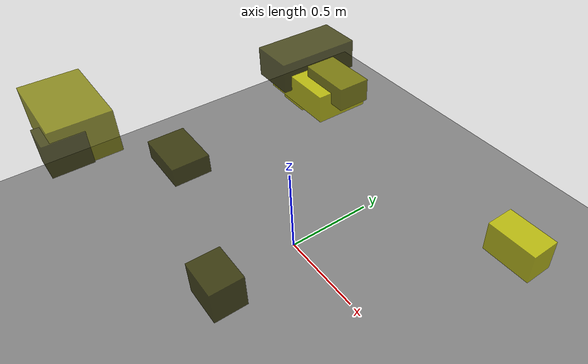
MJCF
<?xml version="1.0"?>
<mujoco model="obstacle_scene">
  <compiler angle="radian" coordinate="local"/>
  <option timestep="0.001" gravity="0 0 -9.81"/>

  <asset>
    <material name="obstacle_mat" rgba="0.8 0.8 0.0 0.8"/>
    <material name="ground_mat" rgba="0.5 0.5 0.5 1"/>
  </asset>

  <worldbody>
    <!-- Ground plane -->
    <geom name="ground" type="plane" size="3 3 0.1" material="ground_mat"/>

    <!-- Obstacles -->
    <body name="obstacle_0" pos="0.710419 -0.740132 0.918032">
      <geom name="obs_0" type="box" size="0.080046 0.062409 0.067528" rgba="0.2 0.2 0.0 0.8"/>
    </body>
    <body name="obstacle_1" pos="-0.078153 -0.876777 1.177584">
      <geom name="obs_1" type="box" size="0.174624 0.113405 0.086134" rgba="0.5 0.5 0.0 0.8"/>
    </body>
    <body name="obstacle_2" pos="-0.113380 0.253986 0.890621">
      <geom name="obs_2" type="box" size="0.201019 0.126968 0.066773" rgba="0.8 0.8 0.0 0.8"/>
    </body>
    <body name="obstacle_3" pos="0.040432 -0.945435 1.156015">
      <geom name="obs_3" type="box" size="0.060720 0.074481 0.067167" rgba="0.2 0.2 0.0 0.8"/>
    </body>
    <body name="obstacle_4" pos="-0.813759 0.666540 0.369036">
      <geom name="obs_4" type="box" size="0.103934 0.055157 0.125116" rgba="0.5 0.5 0.0 0.8"/>
    </body>
    <body name="obstacle_5" pos="0.818155 0.854545 0.149411">
      <geom name="obs_5" type="box" size="0.148728 0.085746 0.094822" rgba="0.8 0.8 0.0 0.8"/>
    </body>
    <body name="obstacle_6" pos="-0.250495 0.291418 0.954162">
      <geom name="obs_6" type="box" size="0.108229 0.203571 0.073302" rgba="0.2 0.2 0.0 0.8"/>
    </body>
    <body name="obstacle_7" pos="0.030738 0.264954 0.955940">
      <geom name="obs_7" type="box" size="0.128573 0.074975 0.054427" rgba="0.5 0.5 0.0 0.8"/>
    </body>
    <body name="obstacle_8" pos="-0.597952 0.561371 0.529115">
      <geom name="obs_8" type="box" size="0.093775 0.137333 0.086157" rgba="0.8 0.8 0.0 0.8"/>
    </body>
    <body name="obstacle_9" pos="-0.382737 -0.400786 0.573024">
      <geom name="obs_9" type="box" size="0.139290 0.096661 0.051088" rgba="0.2 0.2 0.0 0.8"/>
    </body>
  </worldbody>
</mujoco>
